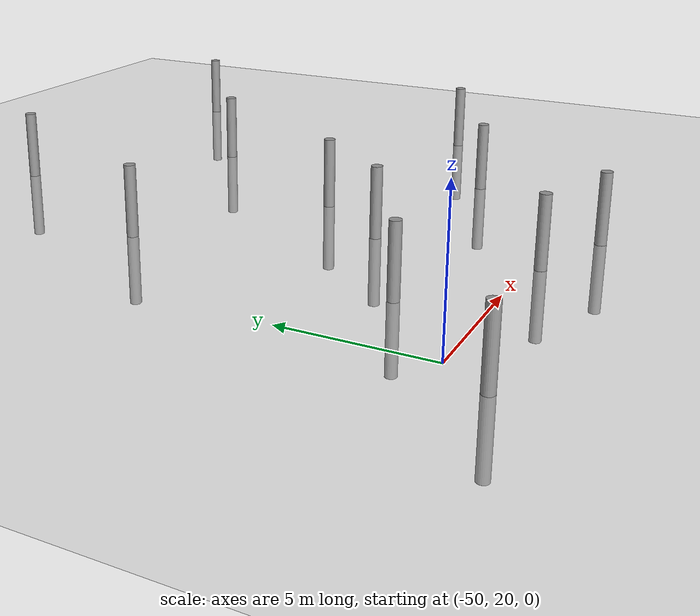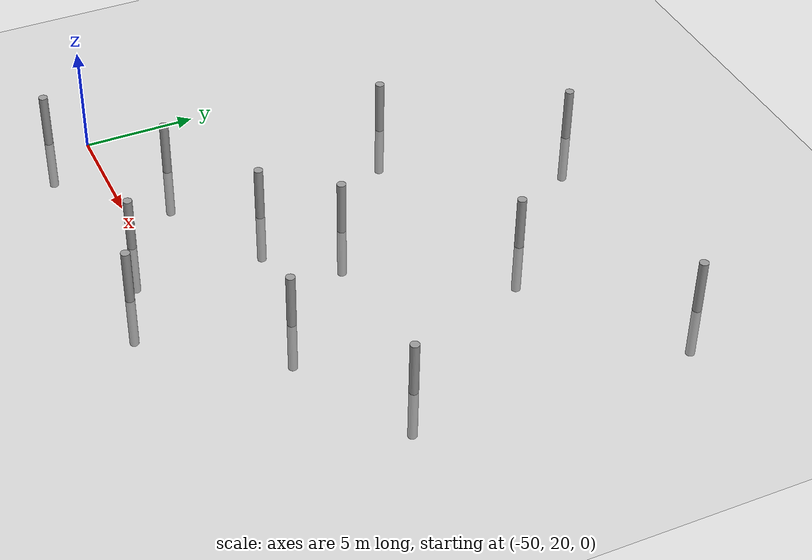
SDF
<sdf version="1.6">
 <world name="default">
  <model name="ground_plane">
   <static>1</static>
   <link name="link">
    <collision name="collision">
     <geometry><plane><normal>0 0 1</normal><size>100 100</size></plane></geometry>
     <surface><friction><ode><mu>100</mu><mu2>50</mu2></ode></friction></surface>
    </collision>
    <visual name="visual">
     <cast_shadows>0</cast_shadows>
     <geometry><plane><normal>0 0 1</normal><size>100 100</size></plane></geometry>
     <material>
      <script><uri>file://media/materials/scripts/gazebo.material</uri><name>Gazebo/Grey</name></script>
     </material>
    </visual>
   </link>
  </model>
  <model name="empty_pillars_5">
   <model name="empty_pillar">
    <link name="link">
     <inertial>
      <mass>1</mass>
      <inertia><ixx>0.145833</ixx><ixy>0</ixy><ixz>0</ixz><iyy>0.145833</iyy><iyz>0</iyz><izz>0.125</izz></inertia>
     </inertial>
     <visual name="visual">
      <geometry><cylinder><radius>0.2</radius><length>5</length></cylinder></geometry>
      <material>
       <script><name>Gazebo/Grey</name><uri>file://media/materials/scripts/gazebo.material</uri></script>
       <shader type="vertex"><normal_map>__default__</normal_map></shader>
       <ambient>0.3 0.3 0.3 1</ambient>
       <diffuse>0.7 0.7 0.7 1</diffuse>
       <specular>0.01 0.01 0.01 1</specular>
       <emissive>0 0 0 1</emissive>
      </material>
     </visual>
     <collision name="collision">
      <geometry><cylinder><radius>0.05</radius><length>5</length></cylinder></geometry>
      <surface>
       <friction>
        <ode><mu>1</mu><mu2>1</mu2><fdir1>0 0 0</fdir1><slip1>0</slip1><slip2>0</slip2></ode>
        <torsional>
         <coefficient>1</coefficient>
         <patch_radius>0</patch_radius>
         <surface_radius>0</surface_radius>
         <use_patch_radius>1</use_patch_radius>
         <ode><slip>0</slip></ode>
        </torsional>
       </friction>
       <bounce><restitution_coefficient>0</restitution_coefficient><threshold>1e+06</threshold></bounce>
       <contact>
        <collide_without_contact>0</collide_without_contact>
        <collide_without_contact_bitmask>1</collide_without_contact_bitmask>
        <collide_bitmask>1</collide_bitmask>
        <ode>
         <soft_cfm>0</soft_cfm>
         <soft_erp>0.2</soft_erp>
         <kp>1e+13</kp>
         <kd>1</kd>
         <max_vel>0.01</max_vel>
         <min_depth>0</min_depth>
        </ode>
        <bullet>
         <split_impulse>1</split_impulse>
         <split_impulse_penetration_threshold>-0.01</split_impulse_penetration_threshold>
         <soft_cfm>0</soft_cfm>
         <soft_erp>0.2</soft_erp>
         <kp>1e+13</kp>
         <kd>1</kd>
        </bullet>
       </contact>
      </surface>
     </collision>
    </link>
    <static>0</static>
    <pose>-3.84527 -0.717439 0 0 -0 0</pose>
   </model>
   <model name="empty_pillar_clone_14">
    <link name="link">
     <inertial>
      <mass>1</mass>
      <inertia><ixx>0.145833</ixx><ixy>0</ixy><ixz>0</ixz><iyy>0.145833</iyy><iyz>0</iyz><izz>0.125</izz></inertia>
     </inertial>
     <visual name="visual">
      <geometry><cylinder><radius>0.2</radius><length>5</length></cylinder></geometry>
      <material>
       <script><name>Gazebo/Grey</name><uri>file://media/materials/scripts/gazebo.material</uri></script>
       <shader type="vertex"><normal_map>__default__</normal_map></shader>
       <ambient>0.3 0.3 0.3 1</ambient>
       <diffuse>0.7 0.7 0.7 1</diffuse>
       <specular>0.01 0.01 0.01 1</specular>
       <emissive>0 0 0 1</emissive>
      </material>
     </visual>
     <collision name="collision">
      <geometry><cylinder><radius>0.05</radius><length>5</length></cylinder></geometry>
      <surface>
       <friction>
        <ode><mu>1</mu><mu2>1</mu2><fdir1>0 0 0</fdir1><slip1>0</slip1><slip2>0</slip2></ode>
        <torsional>
         <coefficient>1</coefficient>
         <patch_radius>0</patch_radius>
         <surface_radius>0</surface_radius>
         <use_patch_radius>1</use_patch_radius>
         <ode><slip>0</slip></ode>
        </torsional>
       </friction>
       <bounce><restitution_coefficient>0</restitution_coefficient><threshold>1e+06</threshold></bounce>
       <contact>
        <collide_without_contact>0</collide_without_contact>
        <collide_without_contact_bitmask>1</collide_without_contact_bitmask>
        <collide_bitmask>1</collide_bitmask>
        <ode>
         <soft_cfm>0</soft_cfm>
         <soft_erp>0.2</soft_erp>
         <kp>1e+13</kp>
         <kd>1</kd>
         <max_vel>0.01</max_vel>
         <min_depth>0</min_depth>
        </ode>
        <bullet>
         <split_impulse>1</split_impulse>
         <split_impulse_penetration_threshold>-0.01</split_impulse_penetration_threshold>
         <soft_cfm>0</soft_cfm>
         <soft_erp>0.2</soft_erp>
         <kp>1e+13</kp>
         <kd>1</kd>
        </bullet>
       </contact>
      </surface>
     </collision>
    </link>
    <static>0</static>
    <pose>-14.0146 0.646152 0 0 -0 0</pose>
   </model>
   <model name="empty_pillar_clone_15">
    <link name="link">
     <inertial>
      <mass>1</mass>
      <inertia><ixx>0.145833</ixx><ixy>0</ixy><ixz>0</ixz><iyy>0.145833</iyy><iyz>0</iyz><izz>0.125</izz></inertia>
     </inertial>
     <visual name="visual">
      <geometry><cylinder><radius>0.2</radius><length>5</length></cylinder></geometry>
      <material>
       <script><name>Gazebo/Grey</name><uri>file://media/materials/scripts/gazebo.material</uri></script>
       <shader type="vertex"><normal_map>__default__</normal_map></shader>
       <ambient>0.3 0.3 0.3 1</ambient>
       <diffuse>0.7 0.7 0.7 1</diffuse>
       <specular>0.01 0.01 0.01 1</specular>
       <emissive>0 0 0 1</emissive>
      </material>
     </visual>
     <collision name="collision">
      <geometry><cylinder><radius>0.05</radius><length>5</length></cylinder></geometry>
      <surface>
       <friction>
        <ode><mu>1</mu><mu2>1</mu2><fdir1>0 0 0</fdir1><slip1>0</slip1><slip2>0</slip2></ode>
        <torsional>
         <coefficient>1</coefficient>
         <patch_radius>0</patch_radius>
         <surface_radius>0</surface_radius>
         <use_patch_radius>1</use_patch_radius>
         <ode><slip>0</slip></ode>
        </torsional>
       </friction>
       <bounce><restitution_coefficient>0</restitution_coefficient><threshold>1e+06</threshold></bounce>
       <contact>
        <collide_without_contact>0</collide_without_contact>
        <collide_without_contact_bitmask>1</collide_without_contact_bitmask>
        <collide_bitmask>1</collide_bitmask>
        <ode>
         <soft_cfm>0</soft_cfm>
         <soft_erp>0.2</soft_erp>
         <kp>1e+13</kp>
         <kd>1</kd>
         <max_vel>0.01</max_vel>
         <min_depth>0</min_depth>
        </ode>
        <bullet>
         <split_impulse>1</split_impulse>
         <split_impulse_penetration_threshold>-0.01</split_impulse_penetration_threshold>
         <soft_cfm>0</soft_cfm>
         <soft_erp>0.2</soft_erp>
         <kp>1e+13</kp>
         <kd>1</kd>
        </bullet>
       </contact>
      </surface>
     </collision>
    </link>
    <static>0</static>
    <pose>-9.37193 -3.58732 0 0 -0 0</pose>
   </model>
   <model name="empty_pillar_clone_17">
    <link name="link">
     <inertial>
      <mass>1</mass>
      <inertia><ixx>0.145833</ixx><ixy>0</ixy><ixz>0</ixz><iyy>0.145833</iyy><iyz>0</iyz><izz>0.125</izz></inertia>
     </inertial>
     <visual name="visual">
      <geometry><cylinder><radius>0.2</radius><length>5</length></cylinder></geometry>
      <material>
       <script><name>Gazebo/Grey</name><uri>file://media/materials/scripts/gazebo.material</uri></script>
       <shader type="vertex"><normal_map>__default__</normal_map></shader>
       <ambient>0.3 0.3 0.3 1</ambient>
       <diffuse>0.7 0.7 0.7 1</diffuse>
       <specular>0.01 0.01 0.01 1</specular>
       <emissive>0 0 0 1</emissive>
      </material>
     </visual>
     <collision name="collision">
      <geometry><cylinder><radius>0.05</radius><length>5</length></cylinder></geometry>
      <surface>
       <friction>
        <ode><mu>1</mu><mu2>1</mu2><fdir1>0 0 0</fdir1><slip1>0</slip1><slip2>0</slip2></ode>
        <torsional>
         <coefficient>1</coefficient>
         <patch_radius>0</patch_radius>
         <surface_radius>0</surface_radius>
         <use_patch_radius>1</use_patch_radius>
         <ode><slip>0</slip></ode>
        </torsional>
       </friction>
       <bounce><restitution_coefficient>0</restitution_coefficient><threshold>1e+06</threshold></bounce>
       <contact>
        <collide_without_contact>0</collide_without_contact>
        <collide_without_contact_bitmask>1</collide_without_contact_bitmask>
        <collide_bitmask>1</collide_bitmask>
        <ode>
         <soft_cfm>0</soft_cfm>
         <soft_erp>0.2</soft_erp>
         <kp>1e+13</kp>
         <kd>1</kd>
         <max_vel>0.01</max_vel>
         <min_depth>0</min_depth>
        </ode>
        <bullet>
         <split_impulse>1</split_impulse>
         <split_impulse_penetration_threshold>-0.01</split_impulse_penetration_threshold>
         <soft_cfm>0</soft_cfm>
         <soft_erp>0.2</soft_erp>
         <kp>1e+13</kp>
         <kd>1</kd>
        </bullet>
       </contact>
      </surface>
     </collision>
    </link>
    <static>0</static>
    <pose>-16.0449 12.755 0 0 -0 0</pose>
   </model>
   <model name="empty_pillar_clone_18">
    <link name="link">
     <inertial>
      <mass>1</mass>
      <inertia><ixx>0.145833</ixx><ixy>0</ixy><ixz>0</ixz><iyy>0.145833</iyy><iyz>0</iyz><izz>0.125</izz></inertia>
     </inertial>
     <visual name="visual">
      <geometry><cylinder><radius>0.2</radius><length>5</length></cylinder></geometry>
      <material>
       <script><name>Gazebo/Grey</name><uri>file://media/materials/scripts/gazebo.material</uri></script>
       <shader type="vertex"><normal_map>__default__</normal_map></shader>
       <ambient>0.3 0.3 0.3 1</ambient>
       <diffuse>0.7 0.7 0.7 1</diffuse>
       <specular>0.01 0.01 0.01 1</specular>
       <emissive>0 0 0 1</emissive>
      </material>
     </visual>
     <collision name="collision">
      <geometry><cylinder><radius>0.05</radius><length>5</length></cylinder></geometry>
      <surface>
       <friction>
        <ode><mu>1</mu><mu2>1</mu2><fdir1>0 0 0</fdir1><slip1>0</slip1><slip2>0</slip2></ode>
        <torsional>
         <coefficient>1</coefficient>
         <patch_radius>0</patch_radius>
         <surface_radius>0</surface_radius>
         <use_patch_radius>1</use_patch_radius>
         <ode><slip>0</slip></ode>
        </torsional>
       </friction>
       <bounce><restitution_coefficient>0</restitution_coefficient><threshold>1e+06</threshold></bounce>
       <contact>
        <collide_without_contact>0</collide_without_contact>
        <collide_without_contact_bitmask>1</collide_without_contact_bitmask>
        <collide_bitmask>1</collide_bitmask>
        <ode>
         <soft_cfm>0</soft_cfm>
         <soft_erp>0.2</soft_erp>
         <kp>1e+13</kp>
         <kd>1</kd>
         <max_vel>0.01</max_vel>
         <min_depth>0</min_depth>
        </ode>
        <bullet>
         <split_impulse>1</split_impulse>
         <split_impulse_penetration_threshold>-0.01</split_impulse_penetration_threshold>
         <soft_cfm>0</soft_cfm>
         <soft_erp>0.2</soft_erp>
         <kp>1e+13</kp>
         <kd>1</kd>
        </bullet>
       </contact>
      </surface>
     </collision>
    </link>
    <static>0</static>
    <pose>-20.0146 5.15966 0 0 -0 0</pose>
   </model>
   <model name="empty_pillar_clone_19">
    <link name="link">
     <inertial>
      <mass>1</mass>
      <inertia><ixx>0.145833</ixx><ixy>0</ixy><ixz>0</ixz><iyy>0.145833</iyy><iyz>0</iyz><izz>0.125</izz></inertia>
     </inertial>
     <visual name="visual">
      <geometry><cylinder><radius>0.2</radius><length>5</length></cylinder></geometry>
      <material>
       <script><name>Gazebo/Grey</name><uri>file://media/materials/scripts/gazebo.material</uri></script>
       <shader type="vertex"><normal_map>__default__</normal_map></shader>
       <ambient>0.3 0.3 0.3 1</ambient>
       <diffuse>0.7 0.7 0.7 1</diffuse>
       <specular>0.01 0.01 0.01 1</specular>
       <emissive>0 0 0 1</emissive>
      </material>
     </visual>
     <collision name="collision">
      <geometry><cylinder><radius>0.05</radius><length>5</length></cylinder></geometry>
      <surface>
       <friction>
        <ode><mu>1</mu><mu2>1</mu2><fdir1>0 0 0</fdir1><slip1>0</slip1><slip2>0</slip2></ode>
        <torsional>
         <coefficient>1</coefficient>
         <patch_radius>0</patch_radius>
         <surface_radius>0</surface_radius>
         <use_patch_radius>1</use_patch_radius>
         <ode><slip>0</slip></ode>
        </torsional>
       </friction>
       <bounce><restitution_coefficient>0</restitution_coefficient><threshold>1e+06</threshold></bounce>
       <contact>
        <collide_without_contact>0</collide_without_contact>
        <collide_without_contact_bitmask>1</collide_without_contact_bitmask>
        <collide_bitmask>1</collide_bitmask>
        <ode>
         <soft_cfm>0</soft_cfm>
         <soft_erp>0.2</soft_erp>
         <kp>1e+13</kp>
         <kd>1</kd>
         <max_vel>0.01</max_vel>
         <min_depth>0</min_depth>
        </ode>
        <bullet>
         <split_impulse>1</split_impulse>
         <split_impulse_penetration_threshold>-0.01</split_impulse_penetration_threshold>
         <soft_cfm>0</soft_cfm>
         <soft_erp>0.2</soft_erp>
         <kp>1e+13</kp>
         <kd>1</kd>
        </bullet>
       </contact>
      </surface>
     </collision>
    </link>
    <static>0</static>
    <pose>-10.0146 7.15966 0 0 -0 0</pose>
   </model>
   <model name="empty_pillar_clone_24">
    <link name="link">
     <inertial>
      <mass>1</mass>
      <inertia><ixx>0.145833</ixx><ixy>0</ixy><ixz>0</ixz><iyy>0.145833</iyy><iyz>0</iyz><izz>0.125</izz></inertia>
     </inertial>
     <visual name="visual">
      <geometry><cylinder><radius>0.2</radius><length>5</length></cylinder></geometry>
      <material>
       <script><name>Gazebo/Grey</name><uri>file://media/materials/scripts/gazebo.material</uri></script>
       <shader type="vertex"><normal_map>__default__</normal_map></shader>
       <ambient>0.3 0.3 0.3 1</ambient>
       <diffuse>0.7 0.7 0.7 1</diffuse>
       <specular>0.01 0.01 0.01 1</specular>
       <emissive>0 0 0 1</emissive>
      </material>
     </visual>
     <collision name="collision">
      <geometry><cylinder><radius>0.05</radius><length>5</length></cylinder></geometry>
      <surface>
       <friction>
        <ode><mu>1</mu><mu2>1</mu2><fdir1>0 0 0</fdir1><slip1>0</slip1><slip2>0</slip2></ode>
        <torsional>
         <coefficient>1</coefficient>
         <patch_radius>0</patch_radius>
         <surface_radius>0</surface_radius>
         <use_patch_radius>1</use_patch_radius>
         <ode><slip>0</slip></ode>
        </torsional>
       </friction>
       <bounce><restitution_coefficient>0</restitution_coefficient><threshold>1e+06</threshold></bounce>
       <contact>
        <collide_without_contact>0</collide_without_contact>
        <collide_without_contact_bitmask>1</collide_without_contact_bitmask>
        <collide_bitmask>1</collide_bitmask>
        <ode>
         <soft_cfm>0</soft_cfm>
         <soft_erp>0.2</soft_erp>
         <kp>1e+13</kp>
         <kd>1</kd>
         <max_vel>0.01</max_vel>
         <min_depth>0</min_depth>
        </ode>
        <bullet>
         <split_impulse>1</split_impulse>
         <split_impulse_penetration_threshold>-0.01</split_impulse_penetration_threshold>
         <soft_cfm>0</soft_cfm>
         <soft_erp>0.2</soft_erp>
         <kp>1e+13</kp>
         <kd>1</kd>
        </bullet>
       </contact>
      </surface>
     </collision>
    </link>
    <static>0</static>
    <pose>-3.46957 11.9413 0 0 -0 0</pose>
   </model>
   <model name="empty_pillar_clone_36">
    <link name="link">
     <inertial>
      <mass>1</mass>
      <inertia><ixx>0.145833</ixx><ixy>0</ixy><ixz>0</ixz><iyy>0.145833</iyy><iyz>0</iyz><izz>0.125</izz></inertia>
     </inertial>
     <visual name="visual">
      <geometry><cylinder><radius>0.2</radius><length>5</length></cylinder></geometry>
      <material>
       <script><name>Gazebo/Grey</name><uri>file://media/materials/scripts/gazebo.material</uri></script>
       <shader type="vertex"><normal_map>__default__</normal_map></shader>
       <ambient>0.3 0.3 0.3 1</ambient>
       <diffuse>0.7 0.7 0.7 1</diffuse>
       <specular>0.01 0.01 0.01 1</specular>
       <emissive>0 0 0 1</emissive>
      </material>
     </visual>
     <collision name="collision">
      <geometry><cylinder><radius>0.05</radius><length>5</length></cylinder></geometry>
      <surface>
       <friction>
        <ode><mu>1</mu><mu2>1</mu2><fdir1>0 0 0</fdir1><slip1>0</slip1><slip2>0</slip2></ode>
        <torsional>
         <coefficient>1</coefficient>
         <patch_radius>0</patch_radius>
         <surface_radius>0</surface_radius>
         <use_patch_radius>1</use_patch_radius>
         <ode><slip>0</slip></ode>
        </torsional>
       </friction>
       <bounce><restitution_coefficient>0</restitution_coefficient><threshold>1e+06</threshold></bounce>
       <contact>
        <collide_without_contact>0</collide_without_contact>
        <collide_without_contact_bitmask>1</collide_without_contact_bitmask>
        <collide_bitmask>1</collide_bitmask>
        <ode>
         <soft_cfm>0</soft_cfm>
         <soft_erp>0.2</soft_erp>
         <kp>1e+13</kp>
         <kd>1</kd>
         <max_vel>0.01</max_vel>
         <min_depth>0</min_depth>
        </ode>
        <bullet>
         <split_impulse>1</split_impulse>
         <split_impulse_penetration_threshold>-0.01</split_impulse_penetration_threshold>
         <soft_cfm>0</soft_cfm>
         <soft_erp>0.2</soft_erp>
         <kp>1e+13</kp>
         <kd>1</kd>
        </bullet>
       </contact>
      </surface>
     </collision>
    </link>
    <static>0</static>
    <pose>-21.0146 -4.84034 0 0 -0 0</pose>
   </model>
   <model name="empty_pillar_clone_37">
    <link name="link">
     <inertial>
      <mass>1</mass>
      <inertia><ixx>0.145833</ixx><ixy>0</ixy><ixz>0</ixz><iyy>0.145833</iyy><iyz>0</iyz><izz>0.125</izz></inertia>
     </inertial>
     <visual name="visual">
      <geometry><cylinder><radius>0.2</radius><length>5</length></cylinder></geometry>
      <material>
       <script><name>Gazebo/Grey</name><uri>file://media/materials/scripts/gazebo.material</uri></script>
       <shader type="vertex"><normal_map>__default__</normal_map></shader>
       <ambient>0.3 0.3 0.3 1</ambient>
       <diffuse>0.7 0.7 0.7 1</diffuse>
       <specular>0.01 0.01 0.01 1</specular>
       <emissive>0 0 0 1</emissive>
      </material>
     </visual>
     <collision name="collision">
      <geometry><cylinder><radius>0.05</radius><length>5</length></cylinder></geometry>
      <surface>
       <friction>
        <ode><mu>1</mu><mu2>1</mu2><fdir1>0 0 0</fdir1><slip1>0</slip1><slip2>0</slip2></ode>
        <torsional>
         <coefficient>1</coefficient>
         <patch_radius>0</patch_radius>
         <surface_radius>0</surface_radius>
         <use_patch_radius>1</use_patch_radius>
         <ode><slip>0</slip></ode>
        </torsional>
       </friction>
       <bounce><restitution_coefficient>0</restitution_coefficient><threshold>1e+06</threshold></bounce>
       <contact>
        <collide_without_contact>0</collide_without_contact>
        <collide_without_contact_bitmask>1</collide_without_contact_bitmask>
        <collide_bitmask>1</collide_bitmask>
        <ode>
         <soft_cfm>0</soft_cfm>
         <soft_erp>0.2</soft_erp>
         <kp>1e+13</kp>
         <kd>1</kd>
         <max_vel>0.01</max_vel>
         <min_depth>0</min_depth>
        </ode>
        <bullet>
         <split_impulse>1</split_impulse>
         <split_impulse_penetration_threshold>-0.01</split_impulse_penetration_threshold>
         <soft_cfm>0</soft_cfm>
         <soft_erp>0.2</soft_erp>
         <kp>1e+13</kp>
         <kd>1</kd>
        </bullet>
       </contact>
      </surface>
     </collision>
    </link>
    <static>0</static>
    <pose>-16.6035 -7.98282 0 0 -0 0</pose>
   </model>
   <model name="empty_pillar_clone_38">
    <link name="link">
     <inertial>
      <mass>1</mass>
      <inertia><ixx>0.145833</ixx><ixy>0</ixy><ixz>0</ixz><iyy>0.145833</iyy><iyz>0</iyz><izz>0.125</izz></inertia>
     </inertial>
     <visual name="visual">
      <geometry><cylinder><radius>0.2</radius><length>5</length></cylinder></geometry>
      <material>
       <script><name>Gazebo/Grey</name><uri>file://media/materials/scripts/gazebo.material</uri></script>
       <shader type="vertex"><normal_map>__default__</normal_map></shader>
       <ambient>0.3 0.3 0.3 1</ambient>
       <diffuse>0.7 0.7 0.7 1</diffuse>
       <specular>0.01 0.01 0.01 1</specular>
       <emissive>0 0 0 1</emissive>
      </material>
     </visual>
     <collision name="collision">
      <geometry><cylinder><radius>0.05</radius><length>5</length></cylinder></geometry>
      <surface>
       <friction>
        <ode><mu>1</mu><mu2>1</mu2><fdir1>0 0 0</fdir1><slip1>0</slip1><slip2>0</slip2></ode>
        <torsional>
         <coefficient>1</coefficient>
         <patch_radius>0</patch_radius>
         <surface_radius>0</surface_radius>
         <use_patch_radius>1</use_patch_radius>
         <ode><slip>0</slip></ode>
        </torsional>
       </friction>
       <bounce><restitution_coefficient>0</restitution_coefficient><threshold>1e+06</threshold></bounce>
       <contact>
        <collide_without_contact>0</collide_without_contact>
        <collide_without_contact_bitmask>1</collide_without_contact_bitmask>
        <collide_bitmask>1</collide_bitmask>
        <ode>
         <soft_cfm>0</soft_cfm>
         <soft_erp>0.2</soft_erp>
         <kp>1e+13</kp>
         <kd>1</kd>
         <max_vel>0.01</max_vel>
         <min_depth>0</min_depth>
        </ode>
        <bullet>
         <split_impulse>1</split_impulse>
         <split_impulse_penetration_threshold>-0.01</split_impulse_penetration_threshold>
         <soft_cfm>0</soft_cfm>
         <soft_erp>0.2</soft_erp>
         <kp>1e+13</kp>
         <kd>1</kd>
        </bullet>
       </contact>
      </surface>
     </collision>
    </link>
    <static>0</static>
    <pose>-16.33 -2.21607 0 0 -0 0</pose>
   </model>
   <model name="empty_pillar_clone_39">
    <link name="link">
     <inertial>
      <mass>1</mass>
      <inertia><ixx>0.145833</ixx><ixy>0</ixy><ixz>0</ixz><iyy>0.145833</iyy><iyz>0</iyz><izz>0.125</izz></inertia>
     </inertial>
     <visual name="visual">
      <geometry><cylinder><radius>0.2</radius><length>5</length></cylinder></geometry>
      <material>
       <script><name>Gazebo/Grey</name><uri>file://media/materials/scripts/gazebo.material</uri></script>
       <shader type="vertex"><normal_map>__default__</normal_map></shader>
       <ambient>0.3 0.3 0.3 1</ambient>
       <diffuse>0.7 0.7 0.7 1</diffuse>
       <specular>0.01 0.01 0.01 1</specular>
       <emissive>0 0 0 1</emissive>
      </material>
     </visual>
     <collision name="collision">
      <geometry><cylinder><radius>0.05</radius><length>5</length></cylinder></geometry>
      <surface>
       <friction>
        <ode><mu>1</mu><mu2>1</mu2><fdir1>0 0 0</fdir1><slip1>0</slip1><slip2>0</slip2></ode>
        <torsional>
         <coefficient>1</coefficient>
         <patch_radius>0</patch_radius>
         <surface_radius>0</surface_radius>
         <use_patch_radius>1</use_patch_radius>
         <ode><slip>0</slip></ode>
        </torsional>
       </friction>
       <bounce><restitution_coefficient>0</restitution_coefficient><threshold>1e+06</threshold></bounce>
       <contact>
        <collide_without_contact>0</collide_without_contact>
        <collide_without_contact_bitmask>1</collide_without_contact_bitmask>
        <collide_bitmask>1</collide_bitmask>
        <ode>
         <soft_cfm>0</soft_cfm>
         <soft_erp>0.2</soft_erp>
         <kp>1e+13</kp>
         <kd>1</kd>
         <max_vel>0.01</max_vel>
         <min_depth>0</min_depth>
        </ode>
        <bullet>
         <split_impulse>1</split_impulse>
         <split_impulse_penetration_threshold>-0.01</split_impulse_penetration_threshold>
         <soft_cfm>0</soft_cfm>
         <soft_erp>0.2</soft_erp>
         <kp>1e+13</kp>
         <kd>1</kd>
        </bullet>
       </contact>
      </surface>
     </collision>
    </link>
    <static>0</static>
    <pose>-13.4361 -9.12638 0 0 -0 0</pose>
   </model>
   <static>0</static>
   <pose>-25.786 27.5577 0 0 -0 0</pose>
  </model>
  <model name="empty_pillars_6">
   <model name="empty_pillar_clone_6">
    <link name="link">
     <inertial>
      <mass>1</mass>
      <inertia><ixx>0.145833</ixx><ixy>0</ixy><ixz>0</ixz><iyy>0.145833</iyy><iyz>0</iyz><izz>0.125</izz></inertia>
     </inertial>
     <visual name="visual">
      <geometry><cylinder><radius>0.2</radius><length>5</length></cylinder></geometry>
      <material>
       <script><name>Gazebo/Grey</name><uri>file://media/materials/scripts/gazebo.material</uri></script>
       <shader type="vertex"><normal_map>__default__</normal_map></shader>
       <ambient>0.3 0.3 0.3 1</ambient>
       <diffuse>0.7 0.7 0.7 1</diffuse>
       <specular>0.01 0.01 0.01 1</specular>
       <emissive>0 0 0 1</emissive>
      </material>
     </visual>
     <collision name="collision">
      <geometry><cylinder><radius>0.05</radius><length>5</length></cylinder></geometry>
      <surface>
       <friction>
        <ode><mu>1</mu><mu2>1</mu2><fdir1>0 0 0</fdir1><slip1>0</slip1><slip2>0</slip2></ode>
        <torsional>
         <coefficient>1</coefficient>
         <patch_radius>0</patch_radius>
         <surface_radius>0</surface_radius>
         <use_patch_radius>1</use_patch_radius>
         <ode><slip>0</slip></ode>
        </torsional>
       </friction>
       <bounce><restitution_coefficient>0</restitution_coefficient><threshold>1e+06</threshold></bounce>
       <contact>
        <collide_without_contact>0</collide_without_contact>
        <collide_without_contact_bitmask>1</collide_without_contact_bitmask>
        <collide_bitmask>1</collide_bitmask>
        <ode>
         <soft_cfm>0</soft_cfm>
         <soft_erp>0.2</soft_erp>
         <kp>1e+13</kp>
         <kd>1</kd>
         <max_vel>0.01</max_vel>
         <min_depth>0</min_depth>
        </ode>
        <bullet>
         <split_impulse>1</split_impulse>
         <split_impulse_penetration_threshold>-0.01</split_impulse_penetration_threshold>
         <soft_cfm>0</soft_cfm>
         <soft_erp>0.2</soft_erp>
         <kp>1e+13</kp>
         <kd>1</kd>
        </bullet>
       </contact>
      </surface>
     </collision>
    </link>
    <static>0</static>
    <pose>24.9156 -9.11394 0 0 -0 0</pose>
   </model>
   <static>0</static>
   <pose>-75.8833 27.5686 0 0 -0 0</pose>
  </model>
 </world>
</sdf>
